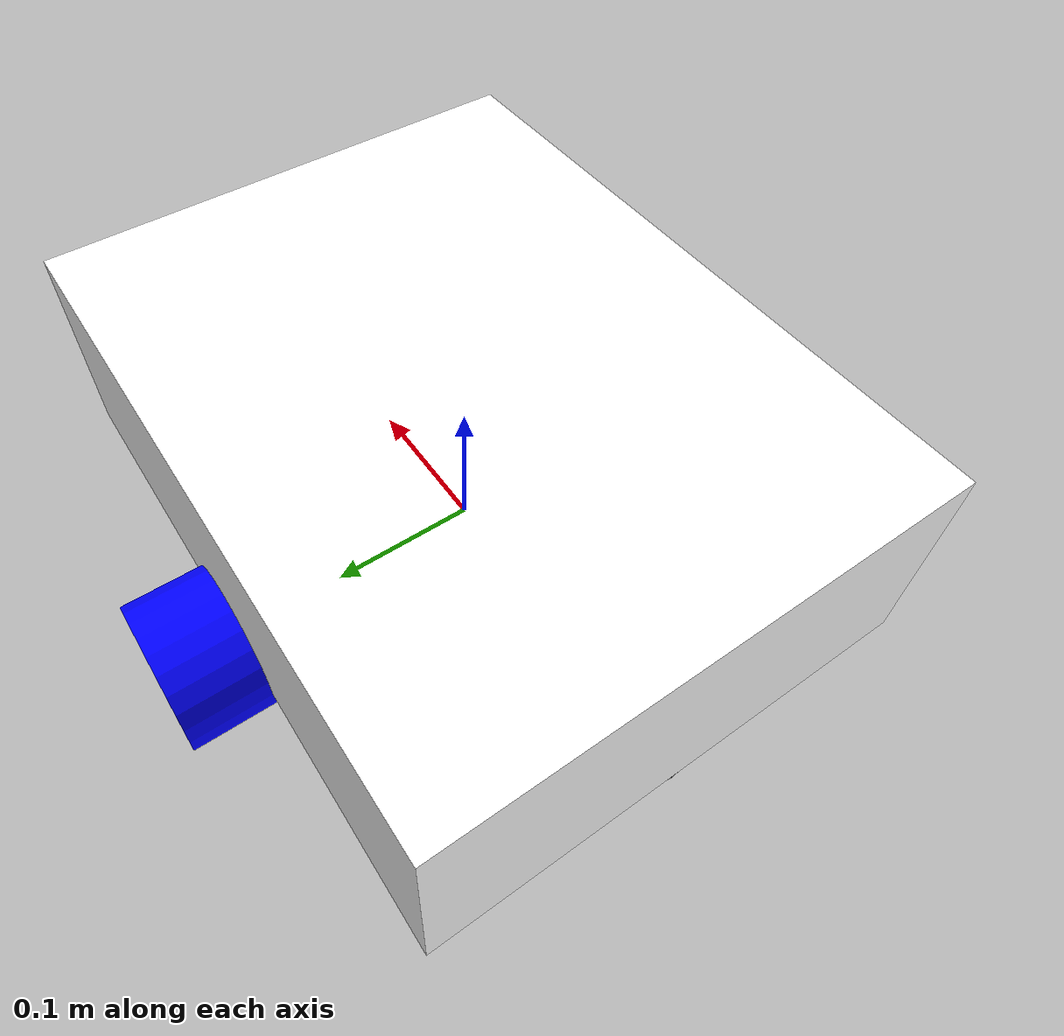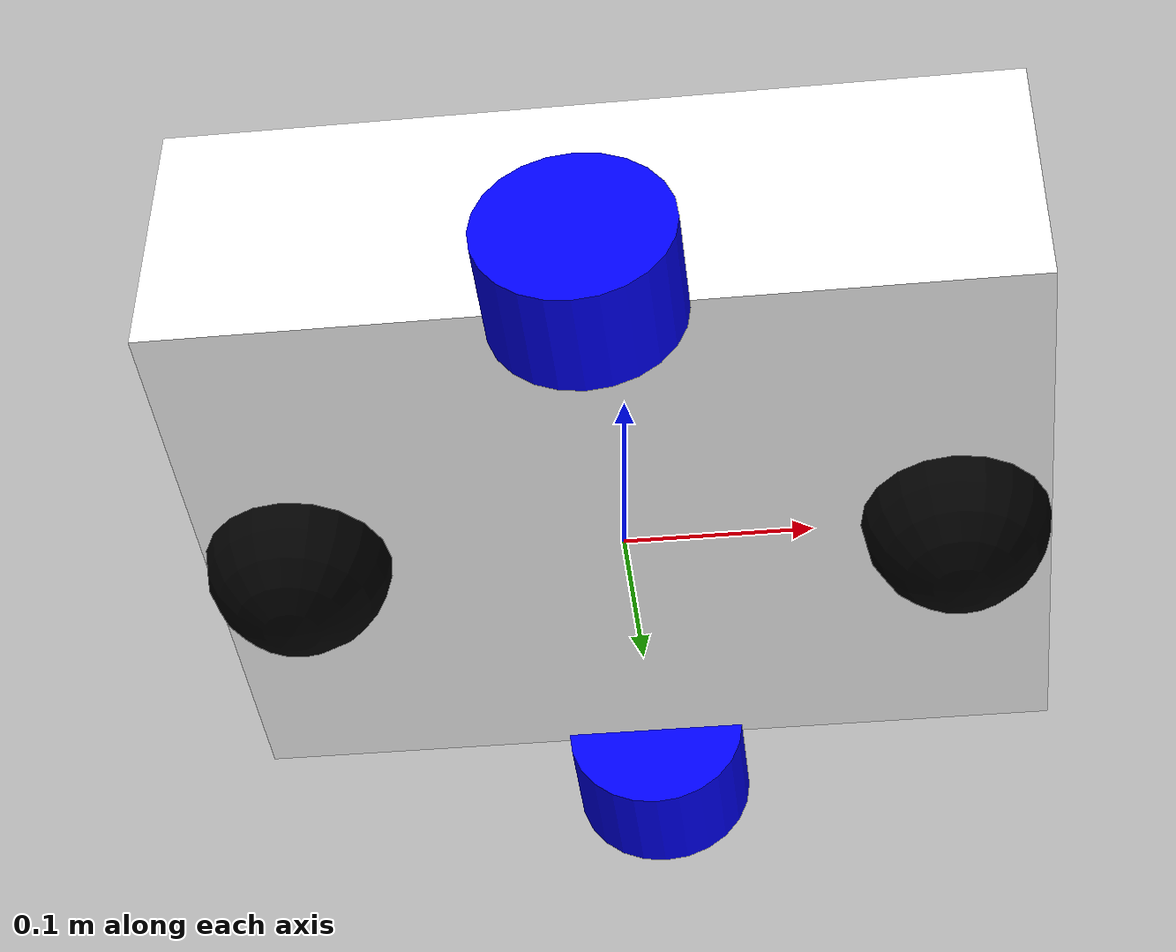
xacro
<?xml version="1.0"?>
<robot xmlns:xacro="http://www.ros.org/wiki/xacro" name="startbot">
<xacro:include filename="gazebo_control.xacro"/>
<xacro:include filename="camera.xacro"/>
<xacro:macro name="inertial_sphere" params="mass radius *origin">
        <inertial>
            <xacro:insert_block name="origin"/>
            <mass value="${mass}" />
            <inertia ixx="${(2/5) * mass * (radius*radius)}" ixy="0.0" ixz="0.0"
                    iyy="${(2/5) * mass * (radius*radius)}" iyz="0.0"
                     izz="${(2/5) * mass * (radius*radius)}" />
        </inertial>
    </xacro:macro>

    <xacro:macro name="inertial_box" params="mass x y z *origin">
        <inertial>
            <xacro:insert_block name="origin"/>
            <mass value="${mass}" />
            <inertia ixx="${(1/12) * mass * (y*y+z*z)}" ixy="0.0" ixz="0.0"
                    iyy="${(1/12) * mass * (x*x+z*z)}" iyz="0.0"
                    izz="${(1/12) * mass * (x*x+y*y)}" />
        </inertial>
    </xacro:macro>

    <xacro:macro name="inertial_cylinder" params="mass length radius *origin">
        <inertial>
            <xacro:insert_block name="origin"/>
            <mass value="${mass}" />
            <inertia ixx="${(1/12) * mass * (3*radius*radius + length*length)}" ixy="0.0" ixz="0.0"
                    iyy="${(1/12) * mass * (3*radius*radius + length*length)}" iyz="0.0"
                    izz="${(1/2) * mass * (radius*radius)}" />
        </inertial>
    </xacro:macro>
<material name="white">
    <color rgba="1 1 1 1"/>
</material>
<material name="red">
    <color rgba="1 0 0 1"/>
</material>
<material name="blue">
    <color rgba="0 0 1 1"/>
</material>
<material name="black">
    <color rgba="0 0 0 1"/>
</material>
<link name="base_link">
</link>
<joint name="chassis_joint" type="fixed">
    <parent link="base_link"/>
    <child link="chassis_link"/>
    <origin xyz="0 0 0"/>
</joint>
<link name="chassis_link">
<visual>
    <origin xyz="0 0 0.075" rpy="0 0 0"/>
    <geometry>
    <box size="0.45 0.35 0.15"/>
    </geometry>
    <material name="white"/>
</visual>
<collision>
        <origin xyz="0 0 0.075" rpy="0 0 0"/>
        <geometry>
        <box size="0.45 0.35 0.15"/>
        </geometry>
    </collision>
    <xacro:inertial_box mass="0.5" x="0.45" y="0.35" z="0.15">
        <origin xyz="0 0 0.075" rpy="0 0 0"/>
    </xacro:inertial_box>
</link>
<gazebo reference="chassis_link">
<material>Gazebo/White</material>
</gazebo>
<!--left wheel-->
<joint name="left_joint" type="continuous">
<parent link="chassis_link"/>
<child link="left_wheel"/>
<origin xyz="0 -0.2 0" rpy="${pi/2} 0 0"/>
<axis xyz="0 0 1"/>
</joint>
<link name="left_wheel">
<visual>
<geometry>
<cylinder length="0.06" radius="0.05"/>
</geometry>
<material name="blue"/>
</visual>
<collision>
<geometry>
<cylinder length="0.06" radius="0.05"/>
</geometry>
</collision>
    <xacro:inertial_cylinder mass="0.1" length="0.06" radius="0.05">
        <origin xyz="0 0 0" rpy="0 0 0"/>
    </xacro:inertial_cylinder>
</link>
<gazebo reference="left_wheel">
<material>Gazebo/Blue</material>
</gazebo>
<!--right wheel-->
<joint name="right_joint" type="continuous">
<parent link="chassis_link"/>
<child link="right_wheel"/>
<origin xyz="0 0.2 0" rpy="-${pi/2} 0 0"/>
<axis xyz="0 0 -1"/>
</joint>
<link name="right_wheel">
<visual>
<geometry>
<cylinder length="0.06" radius="0.05"/>
</geometry>
<material name="blue"/>
</visual>
<collision>
<geometry>
<cylinder length="0.06" radius="0.05"/>
</geometry>
</collision>
    <xacro:inertial_cylinder mass="0.1" length="0.06" radius="0.05">
        <origin xyz="0 0 0" rpy="0 0 0"/>
    </xacro:inertial_cylinder>
</link>
<gazebo reference="right_wheel">
<material>Gazebo/Blue</material>
</gazebo>
<!-- caster wheels-->
<joint name="fcaster_joint" type="fixed">
<parent link="chassis_link"/>
<child link="front_caster"/>
<origin xyz="0.175 0 0"/>
</joint>
<link name="front_caster">
<visual>
<geometry>
<sphere radius="0.05"/>
</geometry>
<material name="black"/>
</visual>
<collision>
<geometry>
<sphere radius="0.05"/>
</geometry>
</collision>
    <xacro:inertial_sphere mass="0.1" radius="0.05">
        <origin xyz="0 0 0" rpy="0 0 0"/>
    </xacro:inertial_sphere>
</link>
<gazebo reference="front_caster">
<material>Gazebo/Black</material>
<mu1 value="0.0001"/>
<mu2 value="0.0001"/>
</gazebo>
<joint name="bcaster_joint" type="fixed">
<parent link="chassis_link"/>
<child link="rear_caster"/>
<origin xyz="-0.175 0 0"/>
</joint>
<link name="rear_caster">
<visual>
<geometry>
<sphere radius="0.05"/>
</geometry>
<material name="black"/>
</visual>
<collision>
<geometry>
<sphere radius="0.05"/>
</geometry>
</collision>
    <xacro:inertial_sphere mass="0.1" radius="0.05">
        <origin xyz="0 0 0" rpy="0 0 0"/>
    </xacro:inertial_sphere>
</link>
<gazebo reference="rear_caster">
<material>Gazebo/Black</material>
<mu1 value="0.0001"/>
<mu2 value="0.0001"/>
</gazebo>
</robot>

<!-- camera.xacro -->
<robot xmlns:xacro="http://www.ros.org/wiki/xacro" >

    <joint name="camera_joint1" type="fixed">
        <parent link="chassis_link"/>
        <child link="camera_frame1"/>
        <origin xyz="0.225 0.1 0.08" rpy="0 0 0"/>
    </joint>

    <link name="camera_frame1">
        <visual>
            <geometry>
                <box size="0.010 0.03 0.03"/>
            </geometry>
            <material name="red"/>
        </visual>
    </link>
    <joint name="camera_optical_joint1" type="fixed">
        <parent link="camera_frame1"/>
        <child link="camera_frame_optical1"/>
        <origin xyz="0 0 0" rpy="${-pi/2} 0 ${-pi/2}"/>
    </joint>
    <link name="camera_frame_optical1">
    </link>
    <gazebo reference="camera_frame1">
        <sensor name="camera" type="camera">
            <pose> 0 0 0 0 0 0 </pose>
            <visualize>true</visualize>
            <update_rate>10</update_rate>
            <camera>
                <horizontal_fov>1.089</horizontal_fov>
                <image>
                    <format>R8G8B8</format>
                    <width>640</width>
                    <height>480</height>
                </image>
                <clip>
                    <near>0.05</near>
                    <far>8.0</far>
                </clip>
            </camera>
            <plugin name="camera_controller" filename="libgazebo_ros_camera.so">
                <frame_name>camera_frame_optical1</frame_name>
            </plugin>
        </sensor>
    </gazebo>

    <joint name="camera_joint2" type="fixed">
        <parent link="chassis_link"/>
        <child link="camera_frame2"/>
        <origin xyz="0.225 -0.1 0.08" rpy="0 0 0"/>
    </joint>

    <link name="camera_frame2">
        <visual>
            <geometry>
                <box size="0.010 0.03 0.03"/>
            </geometry>
            <material name="red"/>
        </visual>
    </link>
    <joint name="camera_optical_joint2" type="fixed">
        <parent link="camera_frame2"/>
        <child link="camera_frame_optical2"/>
        <origin xyz="0 0 0" rpy="${-pi/2} 0 ${-pi/2}"/>
    </joint>
    <link name="camera_frame_optical2">
    </link>
    <gazebo reference="camera_frame2">
        <sensor name="camera" type="camera">
            <pose> 0 0 0 0 0 0 </pose>
            <visualize>true</visualize>
            <update_rate>10</update_rate>
            <camera>
                <horizontal_fov>1.089</horizontal_fov>
                <image>
                    <format>R8G8B8</format>
                    <width>640</width>
                    <height>480</height>
                </image>
                <clip>
                    <near>0.05</near>
                    <far>8.0</far>
                </clip>
            </camera>
            <plugin name="camera_controller" filename="libgazebo_ros_camera.so">
                <frame_name>camera_frame_optical2</frame_name>
            </plugin>
        </sensor>
    </gazebo>

</robot>
